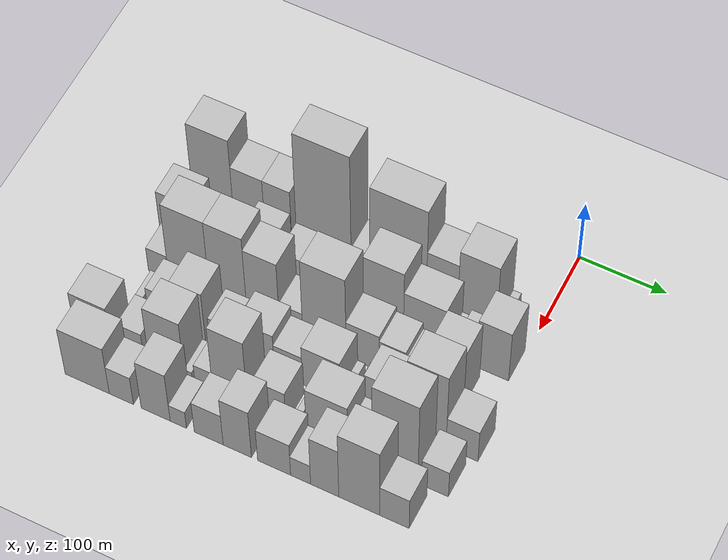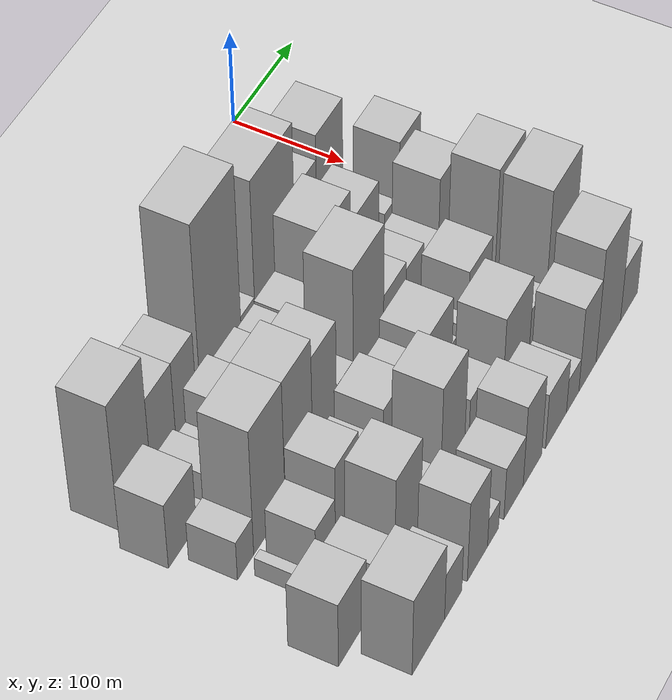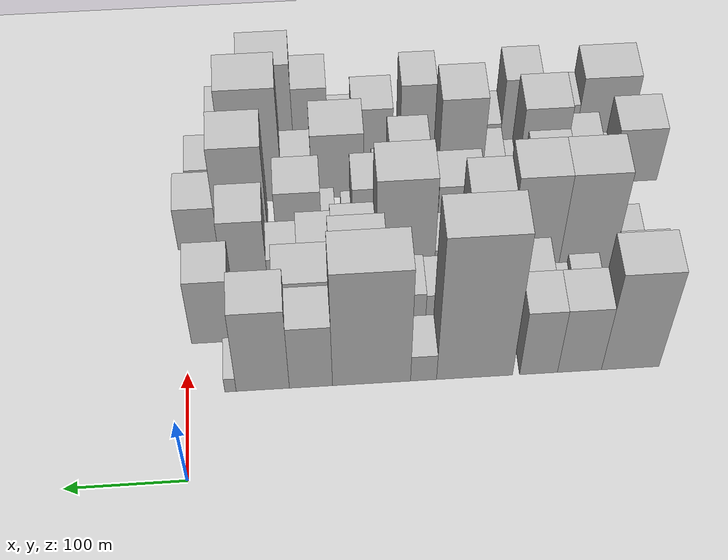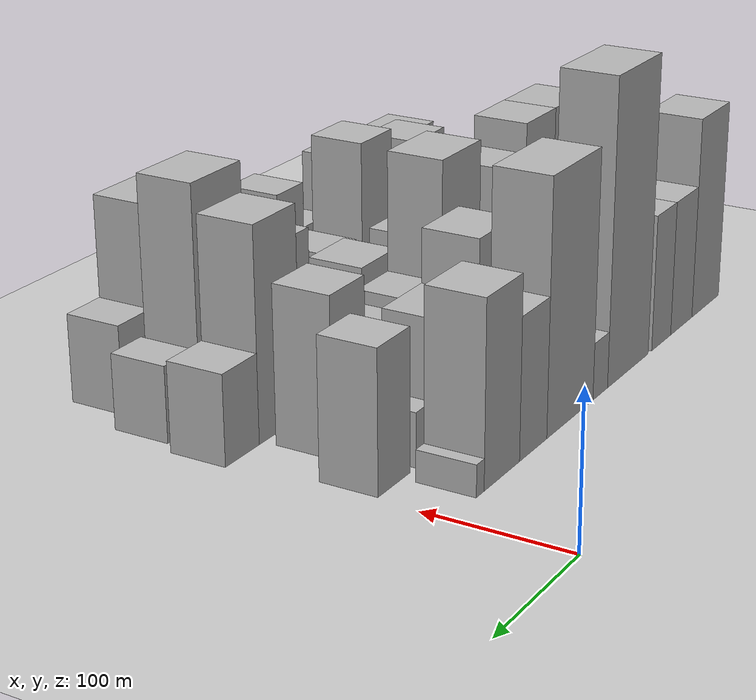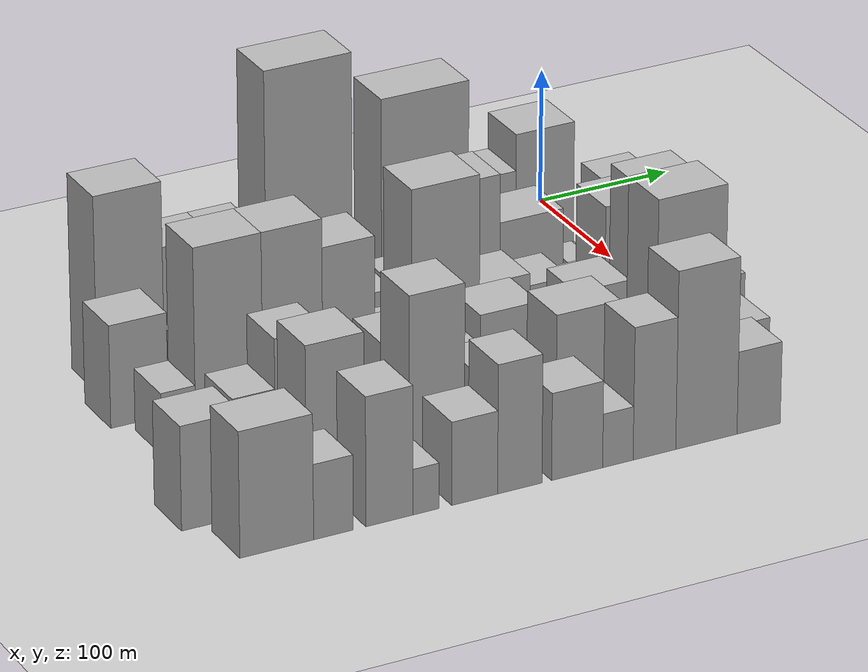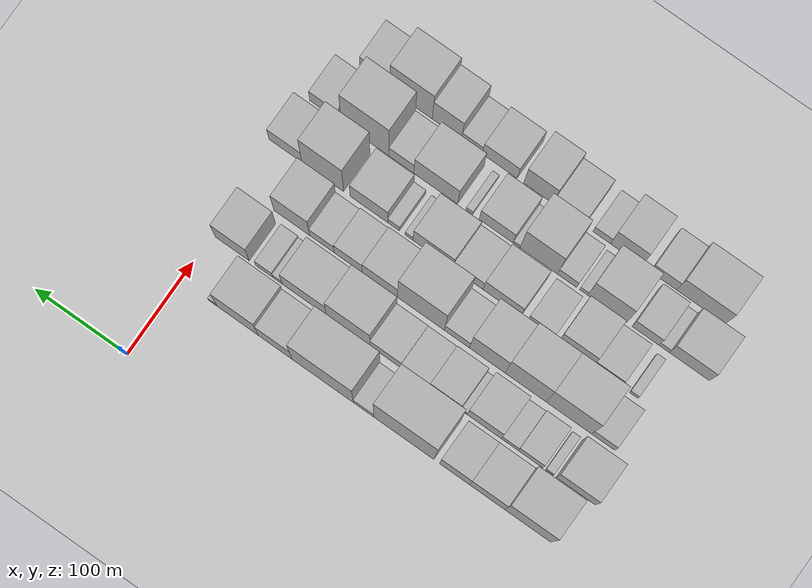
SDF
<sdf version="1.6">
 <world name="default">
  <include><name>ground_plane_1</name><uri>model://HANNAS_ground_plane</uri></include>
  <model name="building_12">
   <static>1</static>
   <pose>100.0000 -373.0268 0 0.000000 0.000000 0.000000</pose>
   <link name="link">
    <pose>0 0 72.00 0 0 0</pose>
    <collision name="collision"><geometry><box><size>40.0000 49.0535 144.0000</size></box></geometry></collision>
    <visual name="visual">
     <cast_shadows>0</cast_shadows>
     <geometry><box><size>40.0000 49.0535 144.0000</size></box></geometry>
     <material>
      <script>
       <uri>model://HANNAS_wall/materials/scripts</uri>
       <uri>model://HANNAS_wall/materials/textures</uri>
       <name>vrc/HANNAS_wall</name>
      </script>
     </material>
    </visual>
   </link>
  </model>
  <model name="building_13">
   <static>1</static>
   <pose>100.0000 -329.8094 0 0.000000 0.000000 0.000000</pose>
   <link name="link">
    <pose>0 0 48.00 0 0 0</pose>
    <collision name="collision"><geometry><box><size>40.0000 37.3814 96.0000</size></box></geometry></collision>
    <visual name="visual">
     <cast_shadows>0</cast_shadows>
     <geometry><box><size>40.0000 37.3814 96.0000</size></box></geometry>
     <material>
      <script>
       <uri>model://HANNAS_wall/materials/scripts</uri>
       <uri>model://HANNAS_wall/materials/textures</uri>
       <name>vrc/HANNAS_wall</name>
      </script>
     </material>
    </visual>
   </link>
  </model>
  <model name="building_14">
   <static>1</static>
   <pose>100.0000 -295.0552 0 0.000000 0.000000 0.000000</pose>
   <link name="link">
    <pose>0 0 48.00 0 0 0</pose>
    <collision name="collision"><geometry><box><size>40.0000 32.1269 96.0000</size></box></geometry></collision>
    <visual name="visual">
     <cast_shadows>0</cast_shadows>
     <geometry><box><size>40.0000 32.1269 96.0000</size></box></geometry>
     <material>
      <script>
       <uri>model://HANNAS_wall/materials/scripts</uri>
       <uri>model://HANNAS_wall/materials/textures</uri>
       <name>vrc/HANNAS_wall</name>
      </script>
     </material>
    </visual>
   </link>
  </model>
  <model name="building_15">
   <static>1</static>
   <pose>100.0000 -240.8266 0 0.000000 0.000000 0.000000</pose>
   <link name="link">
    <pose>0 0 103.50 0 0 0</pose>
    <collision name="collision"><geometry><box><size>40.0000 64.3303 207.0000</size></box></geometry></collision>
    <visual name="visual">
     <cast_shadows>0</cast_shadows>
     <geometry><box><size>40.0000 64.3303 207.0000</size></box></geometry>
     <material>
      <script>
       <uri>model://HANNAS_wall/materials/scripts</uri>
       <uri>model://HANNAS_wall/materials/textures</uri>
       <name>vrc/HANNAS_wall</name>
      </script>
     </material>
    </visual>
   </link>
  </model>
  <model name="building_16">
   <static>1</static>
   <pose>100.0000 -197.7018 0 0.000000 0.000000 0.000000</pose>
   <link name="link">
    <pose>0 0 19.50 0 0 0</pose>
    <collision name="collision"><geometry><box><size>40.0000 21.9192 39.0000</size></box></geometry></collision>
    <visual name="visual">
     <cast_shadows>0</cast_shadows>
     <geometry><box><size>40.0000 21.9192 39.0000</size></box></geometry>
     <material>
      <script>
       <uri>model://HANNAS_wall/materials/scripts</uri>
       <uri>model://HANNAS_wall/materials/textures</uri>
       <name>vrc/HANNAS_wall</name>
      </script>
     </material>
    </visual>
   </link>
  </model>
  <model name="building_17">
   <static>1</static>
   <pose>100.0000 -153.9231 0 0.000000 0.000000 0.000000</pose>
   <link name="link">
    <pose>0 0 84.00 0 0 0</pose>
    <collision name="collision"><geometry><box><size>40.0000 65.6383 168.0000</size></box></geometry></collision>
    <visual name="visual">
     <cast_shadows>0</cast_shadows>
     <geometry><box><size>40.0000 65.6383 168.0000</size></box></geometry>
     <material>
      <script>
       <uri>model://HANNAS_wall/materials/scripts</uri>
       <uri>model://HANNAS_wall/materials/textures</uri>
       <name>vrc/HANNAS_wall</name>
      </script>
     </material>
    </visual>
   </link>
  </model>
  <model name="building_18">
   <static>1</static>
   <pose>100.0000 -102.9866 0 0.000000 0.000000 0.000000</pose>
   <link name="link">
    <pose>0 0 46.50 0 0 0</pose>
    <collision name="collision"><geometry><box><size>40.0000 36.2348 93.0000</size></box></geometry></collision>
    <visual name="visual">
     <cast_shadows>0</cast_shadows>
     <geometry><box><size>40.0000 36.2348 93.0000</size></box></geometry>
     <material>
      <script>
       <uri>model://HANNAS_wall/materials/scripts</uri>
       <uri>model://HANNAS_wall/materials/textures</uri>
       <name>vrc/HANNAS_wall</name>
      </script>
     </material>
    </visual>
   </link>
  </model>
  <model name="building_19">
   <static>1</static>
   <pose>100.0000 -62.6117 0 0.000000 0.000000 0.000000</pose>
   <link name="link">
    <pose>0 0 60.00 0 0 0</pose>
    <collision name="collision"><geometry><box><size>40.0000 44.5149 120.0000</size></box></geometry></collision>
    <visual name="visual">
     <cast_shadows>0</cast_shadows>
     <geometry><box><size>40.0000 44.5149 120.0000</size></box></geometry>
     <material>
      <script>
       <uri>model://HANNAS_wall/materials/scripts</uri>
       <uri>model://HANNAS_wall/materials/textures</uri>
       <name>vrc/HANNAS_wall</name>
      </script>
     </material>
    </visual>
   </link>
  </model>
  <model name="building_20">
   <static>1</static>
   <pose>100.0000 -35.6186 0 0.000000 0.000000 0.000000</pose>
   <link name="link">
    <pose>0 0 10.50 0 0 0</pose>
    <collision name="collision"><geometry><box><size>40.0000 9.4714 21.0000</size></box></geometry></collision>
    <visual name="visual">
     <cast_shadows>0</cast_shadows>
     <geometry><box><size>40.0000 9.4714 21.0000</size></box></geometry>
     <material>
      <script>
       <uri>model://HANNAS_wall/materials/scripts</uri>
       <uri>model://HANNAS_wall/materials/textures</uri>
       <name>vrc/HANNAS_wall</name>
      </script>
     </material>
    </visual>
   </link>
  </model>
  <model name="building_50">
   <static>1</static>
   <pose>149.0000 -390.0981 0 0.000000 0.000000 0.000000</pose>
   <link name="link">
    <pose>0 0 37.50 0 0 0</pose>
    <collision name="collision"><geometry><box><size>40.0000 41.4963 75.0000</size></box></geometry></collision>
    <visual name="visual">
     <cast_shadows>0</cast_shadows>
     <geometry><box><size>40.0000 41.4963 75.0000</size></box></geometry>
     <material>
      <script>
       <uri>model://HANNAS_wall/materials/scripts</uri>
       <uri>model://HANNAS_wall/materials/textures</uri>
       <name>vrc/HANNAS_wall</name>
      </script>
     </material>
    </visual>
   </link>
  </model>
  <model name="building_51">
   <static>1</static>
   <pose>149.0000 -362.1024 0 0.000000 0.000000 0.000000</pose>
   <link name="link">
    <pose>0 0 9.00 0 0 0</pose>
    <collision name="collision"><geometry><box><size>40.0000 8.4950 18.0000</size></box></geometry></collision>
    <visual name="visual">
     <cast_shadows>0</cast_shadows>
     <geometry><box><size>40.0000 8.4950 18.0000</size></box></geometry>
     <material>
      <script>
       <uri>model://HANNAS_wall/materials/scripts</uri>
       <uri>model://HANNAS_wall/materials/textures</uri>
       <name>vrc/HANNAS_wall</name>
      </script>
     </material>
    </visual>
   </link>
  </model>
  <model name="building_52">
   <static>1</static>
   <pose>149.0000 -341.7077 0 0.000000 0.000000 0.000000</pose>
   <link name="link">
    <pose>0 0 22.50 0 0 0</pose>
    <collision name="collision"><geometry><box><size>40.0000 26.2945 45.0000</size></box></geometry></collision>
    <visual name="visual">
     <cast_shadows>0</cast_shadows>
     <geometry><box><size>40.0000 26.2945 45.0000</size></box></geometry>
     <material>
      <script>
       <uri>model://HANNAS_wall/materials/scripts</uri>
       <uri>model://HANNAS_wall/materials/textures</uri>
       <name>vrc/HANNAS_wall</name>
      </script>
     </material>
    </visual>
   </link>
  </model>
  <model name="building_53">
   <static>1</static>
   <pose>149.0000 -319.5899 0 0.000000 0.000000 0.000000</pose>
   <link name="link">
    <pose>0 0 16.50 0 0 0</pose>
    <collision name="collision"><geometry><box><size>40.0000 17.9410 33.0000</size></box></geometry></collision>
    <visual name="visual">
     <cast_shadows>0</cast_shadows>
     <geometry><box><size>40.0000 17.9410 33.0000</size></box></geometry>
     <material>
      <script>
       <uri>model://HANNAS_wall/materials/scripts</uri>
       <uri>model://HANNAS_wall/materials/textures</uri>
       <name>vrc/HANNAS_wall</name>
      </script>
     </material>
    </visual>
   </link>
  </model>
  <model name="building_54">
   <static>1</static>
   <pose>149.0000 -292.4086 0 0.000000 0.000000 0.000000</pose>
   <link name="link">
    <pose>0 0 36.00 0 0 0</pose>
    <collision name="collision"><geometry><box><size>40.0000 36.4217 72.0000</size></box></geometry></collision>
    <visual name="visual">
     <cast_shadows>0</cast_shadows>
     <geometry><box><size>40.0000 36.4217 72.0000</size></box></geometry>
     <material>
      <script>
       <uri>model://HANNAS_wall/materials/scripts</uri>
       <uri>model://HANNAS_wall/materials/textures</uri>
       <name>vrc/HANNAS_wall</name>
      </script>
     </material>
    </visual>
   </link>
  </model>
  <model name="building_55">
   <static>1</static>
   <pose>149.0000 -270.7496 0 0.000000 0.000000 0.000000</pose>
   <link name="link">
    <pose>0 0 7.50 0 0 0</pose>
    <collision name="collision"><geometry><box><size>40.0000 6.8963 15.0000</size></box></geometry></collision>
    <visual name="visual">
     <cast_shadows>0</cast_shadows>
     <geometry><box><size>40.0000 6.8963 15.0000</size></box></geometry>
     <material>
      <script>
       <uri>model://HANNAS_wall/materials/scripts</uri>
       <uri>model://HANNAS_wall/materials/textures</uri>
       <name>vrc/HANNAS_wall</name>
      </script>
     </material>
    </visual>
   </link>
  </model>
  <model name="building_56">
   <static>1</static>
   <pose>149.0000 -250.5568 0 0.000000 0.000000 0.000000</pose>
   <link name="link">
    <pose>0 0 30.00 0 0 0</pose>
    <collision name="collision"><geometry><box><size>40.0000 33.4891 60.0000</size></box></geometry></collision>
    <visual name="visual">
     <cast_shadows>0</cast_shadows>
     <geometry><box><size>40.0000 33.4891 60.0000</size></box></geometry>
     <material>
      <script>
       <uri>model://HANNAS_wall/materials/scripts</uri>
       <uri>model://HANNAS_wall/materials/textures</uri>
       <name>vrc/HANNAS_wall</name>
      </script>
     </material>
    </visual>
   </link>
  </model>
  <model name="building_57">
   <static>1</static>
   <pose>149.0000 -218.5528 0 0.000000 0.000000 0.000000</pose>
   <link name="link">
    <pose>0 0 27.00 0 0 0</pose>
    <collision name="collision"><geometry><box><size>40.0000 30.5189 54.0000</size></box></geometry></collision>
    <visual name="visual">
     <cast_shadows>0</cast_shadows>
     <geometry><box><size>40.0000 30.5189 54.0000</size></box></geometry>
     <material>
      <script>
       <uri>model://HANNAS_wall/materials/scripts</uri>
       <uri>model://HANNAS_wall/materials/textures</uri>
       <name>vrc/HANNAS_wall</name>
      </script>
     </material>
    </visual>
   </link>
  </model>
  <model name="building_58">
   <static>1</static>
   <pose>149.0000 -186.6593 0 0.000000 0.000000 0.000000</pose>
   <link name="link">
    <pose>0 0 28.50 0 0 0</pose>
    <collision name="collision"><geometry><box><size>40.0000 33.2682 57.0000</size></box></geometry></collision>
    <visual name="visual">
     <cast_shadows>0</cast_shadows>
     <geometry><box><size>40.0000 33.2682 57.0000</size></box></geometry>
     <material>
      <script>
       <uri>model://HANNAS_wall/materials/scripts</uri>
       <uri>model://HANNAS_wall/materials/textures</uri>
       <name>vrc/HANNAS_wall</name>
      </script>
     </material>
    </visual>
   </link>
  </model>
  <model name="building_59">
   <static>1</static>
   <pose>149.0000 -146.6231 0 0.000000 0.000000 0.000000</pose>
   <link name="link">
    <pose>0 0 60.00 0 0 0</pose>
    <collision name="collision"><geometry><box><size>40.0000 46.8044 120.0000</size></box></geometry></collision>
    <visual name="visual">
     <cast_shadows>0</cast_shadows>
     <geometry><box><size>40.0000 46.8044 120.0000</size></box></geometry>
     <material>
      <script>
       <uri>model://HANNAS_wall/materials/scripts</uri>
       <uri>model://HANNAS_wall/materials/textures</uri>
       <name>vrc/HANNAS_wall</name>
      </script>
     </material>
    </visual>
   </link>
  </model>
  <model name="building_60">
   <static>1</static>
   <pose>149.0000 -99.2421 0 0.000000 0.000000 0.000000</pose>
   <link name="link">
    <pose>0 0 42.00 0 0 0</pose>
    <collision name="collision"><geometry><box><size>40.0000 47.9576 84.0000</size></box></geometry></collision>
    <visual name="visual">
     <cast_shadows>0</cast_shadows>
     <geometry><box><size>40.0000 47.9576 84.0000</size></box></geometry>
     <material>
      <script>
       <uri>model://HANNAS_wall/materials/scripts</uri>
       <uri>model://HANNAS_wall/materials/textures</uri>
       <name>vrc/HANNAS_wall</name>
      </script>
     </material>
    </visual>
   </link>
  </model>
  <model name="building_61">
   <static>1</static>
   <pose>149.0000 -70.0975 0 0.000000 0.000000 0.000000</pose>
   <link name="link">
    <pose>0 0 12.00 0 0 0</pose>
    <collision name="collision"><geometry><box><size>40.0000 10.3316 24.0000</size></box></geometry></collision>
    <visual name="visual">
     <cast_shadows>0</cast_shadows>
     <geometry><box><size>40.0000 10.3316 24.0000</size></box></geometry>
     <material>
      <script>
       <uri>model://HANNAS_wall/materials/scripts</uri>
       <uri>model://HANNAS_wall/materials/textures</uri>
       <name>vrc/HANNAS_wall</name>
      </script>
     </material>
    </visual>
   </link>
  </model>
  <model name="building_62">
   <static>1</static>
   <pose>149.0000 -55.8874 0 0.000000 0.000000 0.000000</pose>
   <link name="link">
    <pose>0 0 18.00 0 0 0</pose>
    <collision name="collision"><geometry><box><size>40.0000 18.0885 36.0000</size></box></geometry></collision>
    <visual name="visual">
     <cast_shadows>0</cast_shadows>
     <geometry><box><size>40.0000 18.0885 36.0000</size></box></geometry>
     <material>
      <script>
       <uri>model://HANNAS_wall/materials/scripts</uri>
       <uri>model://HANNAS_wall/materials/textures</uri>
       <name>vrc/HANNAS_wall</name>
      </script>
     </material>
    </visual>
   </link>
  </model>
  <model name="building_63">
   <static>1</static>
   <pose>149.0000 -21.5145 0 0.000000 0.000000 0.000000</pose>
   <link name="link">
    <pose>0 0 46.50 0 0 0</pose>
    <collision name="collision"><geometry><box><size>40.0000 36.6574 93.0000</size></box></geometry></collision>
    <visual name="visual">
     <cast_shadows>0</cast_shadows>
     <geometry><box><size>40.0000 36.6574 93.0000</size></box></geometry>
     <material>
      <script>
       <uri>model://HANNAS_wall/materials/scripts</uri>
       <uri>model://HANNAS_wall/materials/textures</uri>
       <name>vrc/HANNAS_wall</name>
      </script>
     </material>
    </visual>
   </link>
  </model>
  <model name="building_98">
   <static>1</static>
   <pose>198.0000 -385.2307 0 0.000000 0.000000 0.000000</pose>
   <link name="link">
    <pose>0 0 22.50 0 0 0</pose>
    <collision name="collision"><geometry><box><size>40.0000 24.6811 45.0000</size></box></geometry></collision>
    <visual name="visual">
     <cast_shadows>0</cast_shadows>
     <geometry><box><size>40.0000 24.6811 45.0000</size></box></geometry>
     <material>
      <script>
       <uri>model://HANNAS_wall/materials/scripts</uri>
       <uri>model://HANNAS_wall/materials/textures</uri>
       <name>vrc/HANNAS_wall</name>
      </script>
     </material>
    </visual>
   </link>
  </model>
  <model name="building_99">
   <static>1</static>
   <pose>198.0000 -348.5359 0 0.000000 0.000000 0.000000</pose>
   <link name="link">
    <pose>0 0 72.00 0 0 0</pose>
    <collision name="collision"><geometry><box><size>40.0000 48.7085 144.0000</size></box></geometry></collision>
    <visual name="visual">
     <cast_shadows>0</cast_shadows>
     <geometry><box><size>40.0000 48.7085 144.0000</size></box></geometry>
     <material>
      <script>
       <uri>model://HANNAS_wall/materials/scripts</uri>
       <uri>model://HANNAS_wall/materials/textures</uri>
       <name>vrc/HANNAS_wall</name>
      </script>
     </material>
    </visual>
   </link>
  </model>
  <model name="building_100">
   <static>1</static>
   <pose>198.0000 -302.3318 0 0.000000 0.000000 0.000000</pose>
   <link name="link">
    <pose>0 0 72.00 0 0 0</pose>
    <collision name="collision"><geometry><box><size>40.0000 43.6997 144.0000</size></box></geometry></collision>
    <visual name="visual">
     <cast_shadows>0</cast_shadows>
     <geometry><box><size>40.0000 43.6997 144.0000</size></box></geometry>
     <material>
      <script>
       <uri>model://HANNAS_wall/materials/scripts</uri>
       <uri>model://HANNAS_wall/materials/textures</uri>
       <name>vrc/HANNAS_wall</name>
      </script>
     </material>
    </visual>
   </link>
  </model>
  <model name="building_101">
   <static>1</static>
   <pose>198.0000 -261.3246 0 0.000000 0.000000 0.000000</pose>
   <link name="link">
    <pose>0 0 61.50 0 0 0</pose>
    <collision name="collision"><geometry><box><size>40.0000 38.3147 123.0000</size></box></geometry></collision>
    <visual name="visual">
     <cast_shadows>0</cast_shadows>
     <geometry><box><size>40.0000 38.3147 123.0000</size></box></geometry>
     <material>
      <script>
       <uri>model://HANNAS_wall/materials/scripts</uri>
       <uri>model://HANNAS_wall/materials/textures</uri>
       <name>vrc/HANNAS_wall</name>
      </script>
     </material>
    </visual>
   </link>
  </model>
  <model name="building_102">
   <static>1</static>
   <pose>198.0000 -228.6058 0 0.000000 0.000000 0.000000</pose>
   <link name="link">
    <pose>0 0 24.00 0 0 0</pose>
    <collision name="collision"><geometry><box><size>40.0000 27.1228 48.0000</size></box></geometry></collision>
    <visual name="visual">
     <cast_shadows>0</cast_shadows>
     <geometry><box><size>40.0000 27.1228 48.0000</size></box></geometry>
     <material>
      <script>
       <uri>model://HANNAS_wall/materials/scripts</uri>
       <uri>model://HANNAS_wall/materials/textures</uri>
       <name>vrc/HANNAS_wall</name>
      </script>
     </material>
    </visual>
   </link>
  </model>
  <model name="building_103">
   <static>1</static>
   <pose>198.0000 -189.9139 0 0.000000 0.000000 0.000000</pose>
   <link name="link">
    <pose>0 0 75.00 0 0 0</pose>
    <collision name="collision"><geometry><box><size>40.0000 50.2609 150.0000</size></box></geometry></collision>
    <visual name="visual">
     <cast_shadows>0</cast_shadows>
     <geometry><box><size>40.0000 50.2609 150.0000</size></box></geometry>
     <material>
      <script>
       <uri>model://HANNAS_wall/materials/scripts</uri>
       <uri>model://HANNAS_wall/materials/textures</uri>
       <name>vrc/HANNAS_wall</name>
      </script>
     </material>
    </visual>
   </link>
  </model>
  <model name="building_104">
   <static>1</static>
   <pose>198.0000 -145.8619 0 0.000000 0.000000 0.000000</pose>
   <link name="link">
    <pose>0 0 34.50 0 0 0</pose>
    <collision name="collision"><geometry><box><size>40.0000 37.8431 69.0000</size></box></geometry></collision>
    <visual name="visual">
     <cast_shadows>0</cast_shadows>
     <geometry><box><size>40.0000 37.8431 69.0000</size></box></geometry>
     <material>
      <script>
       <uri>model://HANNAS_wall/materials/scripts</uri>
       <uri>model://HANNAS_wall/materials/textures</uri>
       <name>vrc/HANNAS_wall</name>
      </script>
     </material>
    </visual>
   </link>
  </model>
  <model name="building_105">
   <static>1</static>
   <pose>198.0000 -111.8500 0 0.000000 0.000000 0.000000</pose>
   <link name="link">
    <pose>0 0 30.00 0 0 0</pose>
    <collision name="collision"><geometry><box><size>40.0000 30.1807 60.0000</size></box></geometry></collision>
    <visual name="visual">
     <cast_shadows>0</cast_shadows>
     <geometry><box><size>40.0000 30.1807 60.0000</size></box></geometry>
     <material>
      <script>
       <uri>model://HANNAS_wall/materials/scripts</uri>
       <uri>model://HANNAS_wall/materials/textures</uri>
       <name>vrc/HANNAS_wall</name>
      </script>
     </material>
    </visual>
   </link>
  </model>
  <model name="building_106">
   <static>1</static>
   <pose>198.0000 -83.5195 0 0.000000 0.000000 0.000000</pose>
   <link name="link">
    <pose>0 0 24.00 0 0 0</pose>
    <collision name="collision"><geometry><box><size>40.0000 26.4803 48.0000</size></box></geometry></collision>
    <visual name="visual">
     <cast_shadows>0</cast_shadows>
     <geometry><box><size>40.0000 26.4803 48.0000</size></box></geometry>
     <material>
      <script>
       <uri>model://HANNAS_wall/materials/scripts</uri>
       <uri>model://HANNAS_wall/materials/textures</uri>
       <name>vrc/HANNAS_wall</name>
      </script>
     </material>
    </visual>
   </link>
  </model>
  <model name="building_107">
   <static>1</static>
   <pose>198.0000 -50.9484 0 0.000000 0.000000 0.000000</pose>
   <link name="link">
    <pose>0 0 52.50 0 0 0</pose>
    <collision name="collision"><geometry><box><size>40.0000 38.6619 105.0000</size></box></geometry></collision>
    <visual name="visual">
     <cast_shadows>0</cast_shadows>
     <geometry><box><size>40.0000 38.6619 105.0000</size></box></geometry>
     <material>
      <script>
       <uri>model://HANNAS_wall/materials/scripts</uri>
       <uri>model://HANNAS_wall/materials/textures</uri>
       <name>vrc/HANNAS_wall</name>
      </script>
     </material>
    </visual>
   </link>
  </model>
  <model name="building_148">
   <static>1</static>
   <pose>247.0000 -383.6363 0 0.000000 0.000000 0.000000</pose>
   <link name="link">
    <pose>0 0 10.50 0 0 0</pose>
    <collision name="collision"><geometry><box><size>40.0000 9.0646 21.0000</size></box></geometry></collision>
    <visual name="visual">
     <cast_shadows>0</cast_shadows>
     <geometry><box><size>40.0000 9.0646 21.0000</size></box></geometry>
     <material>
      <script>
       <uri>model://HANNAS_wall/materials/scripts</uri>
       <uri>model://HANNAS_wall/materials/textures</uri>
       <name>vrc/HANNAS_wall</name>
      </script>
     </material>
    </visual>
   </link>
  </model>
  <model name="building_149">
   <static>1</static>
   <pose>247.0000 -354.8018 0 0.000000 0.000000 0.000000</pose>
   <link name="link">
    <pose>0 0 28.50 0 0 0</pose>
    <collision name="collision"><geometry><box><size>40.0000 30.6044 57.0000</size></box></geometry></collision>
    <visual name="visual">
     <cast_shadows>0</cast_shadows>
     <geometry><box><size>40.0000 30.6044 57.0000</size></box></geometry>
     <material>
      <script>
       <uri>model://HANNAS_wall/materials/scripts</uri>
       <uri>model://HANNAS_wall/materials/textures</uri>
       <name>vrc/HANNAS_wall</name>
      </script>
     </material>
    </visual>
   </link>
  </model>
  <model name="building_150">
   <static>1</static>
   <pose>247.0000 -321.1986 0 0.000000 0.000000 0.000000</pose>
   <link name="link">
    <pose>0 0 46.50 0 0 0</pose>
    <collision name="collision"><geometry><box><size>40.0000 36.6021 93.0000</size></box></geometry></collision>
    <visual name="visual">
     <cast_shadows>0</cast_shadows>
     <geometry><box><size>40.0000 36.6021 93.0000</size></box></geometry>
     <material>
      <script>
       <uri>model://HANNAS_wall/materials/scripts</uri>
       <uri>model://HANNAS_wall/materials/textures</uri>
       <name>vrc/HANNAS_wall</name>
      </script>
     </material>
    </visual>
   </link>
  </model>
  <model name="building_151">
   <static>1</static>
   <pose>247.0000 -283.9694 0 0.000000 0.000000 0.000000</pose>
   <link name="link">
    <pose>0 0 25.50 0 0 0</pose>
    <collision name="collision"><geometry><box><size>40.0000 27.8563 51.0000</size></box></geometry></collision>
    <visual name="visual">
     <cast_shadows>0</cast_shadows>
     <geometry><box><size>40.0000 27.8563 51.0000</size></box></geometry>
     <material>
      <script>
       <uri>model://HANNAS_wall/materials/scripts</uri>
       <uri>model://HANNAS_wall/materials/textures</uri>
       <name>vrc/HANNAS_wall</name>
      </script>
     </material>
    </visual>
   </link>
  </model>
  <model name="building_152">
   <static>1</static>
   <pose>247.0000 -242.7623 0 0.000000 0.000000 0.000000</pose>
   <link name="link">
    <pose>0 0 36.00 0 0 0</pose>
    <collision name="collision"><geometry><box><size>40.0000 40.5579 72.0000</size></box></geometry></collision>
    <visual name="visual">
     <cast_shadows>0</cast_shadows>
     <geometry><box><size>40.0000 40.5579 72.0000</size></box></geometry>
     <material>
      <script>
       <uri>model://HANNAS_wall/materials/scripts</uri>
       <uri>model://HANNAS_wall/materials/textures</uri>
       <name>vrc/HANNAS_wall</name>
      </script>
     </material>
    </visual>
   </link>
  </model>
  <model name="building_153">
   <static>1</static>
   <pose>247.0000 -206.3472 0 0.000000 0.000000 0.000000</pose>
   <link name="link">
    <pose>0 0 27.00 0 0 0</pose>
    <collision name="collision"><geometry><box><size>40.0000 32.2722 54.0000</size></box></geometry></collision>
    <visual name="visual">
     <cast_shadows>0</cast_shadows>
     <geometry><box><size>40.0000 32.2722 54.0000</size></box></geometry>
     <material>
      <script>
       <uri>model://HANNAS_wall/materials/scripts</uri>
       <uri>model://HANNAS_wall/materials/textures</uri>
       <name>vrc/HANNAS_wall</name>
      </script>
     </material>
    </visual>
   </link>
  </model>
  <model name="building_154">
   <static>1</static>
   <pose>247.0000 -168.5744 0 0.000000 0.000000 0.000000</pose>
   <link name="link">
    <pose>0 0 37.50 0 0 0</pose>
    <collision name="collision"><geometry><box><size>40.0000 43.2733 75.0000</size></box></geometry></collision>
    <visual name="visual">
     <cast_shadows>0</cast_shadows>
     <geometry><box><size>40.0000 43.2733 75.0000</size></box></geometry>
     <material>
      <script>
       <uri>model://HANNAS_wall/materials/scripts</uri>
       <uri>model://HANNAS_wall/materials/textures</uri>
       <name>vrc/HANNAS_wall</name>
      </script>
     </material>
    </visual>
   </link>
  </model>
  <model name="building_155">
   <static>1</static>
   <pose>247.0000 -142.6561 0 0.000000 0.000000 0.000000</pose>
   <link name="link">
    <pose>0 0 10.50 0 0 0</pose>
    <collision name="collision"><geometry><box><size>40.0000 8.5634 21.0000</size></box></geometry></collision>
    <visual name="visual">
     <cast_shadows>0</cast_shadows>
     <geometry><box><size>40.0000 8.5634 21.0000</size></box></geometry>
     <material>
      <script>
       <uri>model://HANNAS_wall/materials/scripts</uri>
       <uri>model://HANNAS_wall/materials/textures</uri>
       <name>vrc/HANNAS_wall</name>
      </script>
     </material>
    </visual>
   </link>
  </model>
  <model name="building_156">
   <static>1</static>
   <pose>247.0000 -125.9421 0 0.000000 0.000000 0.000000</pose>
   <link name="link">
    <pose>0 0 13.50 0 0 0</pose>
    <collision name="collision"><geometry><box><size>40.0000 12.8646 27.0000</size></box></geometry></collision>
    <visual name="visual">
     <cast_shadows>0</cast_shadows>
     <geometry><box><size>40.0000 12.8646 27.0000</size></box></geometry>
     <material>
      <script>
       <uri>model://HANNAS_wall/materials/scripts</uri>
       <uri>model://HANNAS_wall/materials/textures</uri>
       <name>vrc/HANNAS_wall</name>
      </script>
     </material>
    </visual>
   </link>
  </model>
  <model name="building_157">
   <static>1</static>
   <pose>247.0000 -99.2802 0 0.000000 0.000000 0.000000</pose>
   <link name="link">
    <pose>0 0 37.50 0 0 0</pose>
    <collision name="collision"><geometry><box><size>40.0000 40.4591 75.0000</size></box></geometry></collision>
    <visual name="visual">
     <cast_shadows>0</cast_shadows>
     <geometry><box><size>40.0000 40.4591 75.0000</size></box></geometry>
     <material>
      <script>
       <uri>model://HANNAS_wall/materials/scripts</uri>
       <uri>model://HANNAS_wall/materials/textures</uri>
       <name>vrc/HANNAS_wall</name>
      </script>
     </material>
    </visual>
   </link>
  </model>
  <model name="building_158">
   <static>1</static>
   <pose>247.0000 -49.4859 0 0.000000 0.000000 0.000000</pose>
   <link name="link">
    <pose>0 0 70.50 0 0 0</pose>
    <collision name="collision"><geometry><box><size>40.0000 45.1297 141.0000</size></box></geometry></collision>
    <visual name="visual">
     <cast_shadows>0</cast_shadows>
     <geometry><box><size>40.0000 45.1297 141.0000</size></box></geometry>
     <material>
      <script>
       <uri>model://HANNAS_wall/materials/scripts</uri>
       <uri>model://HANNAS_wall/materials/textures</uri>
       <name>vrc/HANNAS_wall</name>
      </script>
     </material>
    </visual>
   </link>
  </model>
  <model name="building_159">
   <static>1</static>
   <pose>247.0000 -9.1135 0 0.000000 0.000000 0.000000</pose>
   <link name="link">
    <pose>0 0 30.00 0 0 0</pose>
    <collision name="collision"><geometry><box><size>40.0000 35.6151 60.0000</size></box></geometry></collision>
    <visual name="visual">
     <cast_shadows>0</cast_shadows>
     <geometry><box><size>40.0000 35.6151 60.0000</size></box></geometry>
     <material>
      <script>
       <uri>model://HANNAS_wall/materials/scripts</uri>
       <uri>model://HANNAS_wall/materials/textures</uri>
       <name>vrc/HANNAS_wall</name>
      </script>
     </material>
    </visual>
   </link>
  </model>
  <model name="building_194">
   <static>1</static>
   <pose>296.0000 -409.0235 0 0.000000 0.000000 0.000000</pose>
   <link name="link">
    <pose>0 0 37.50 0 0 0</pose>
    <collision name="collision"><geometry><box><size>40.0000 42.9086 75.0000</size></box></geometry></collision>
    <visual name="visual">
     <cast_shadows>0</cast_shadows>
     <geometry><box><size>40.0000 42.9086 75.0000</size></box></geometry>
     <material>
      <script>
       <uri>model://HANNAS_wall/materials/scripts</uri>
       <uri>model://HANNAS_wall/materials/textures</uri>
       <name>vrc/HANNAS_wall</name>
      </script>
     </material>
    </visual>
   </link>
  </model>
  <model name="building_195">
   <static>1</static>
   <pose>296.0000 -382.0107 0 0.000000 0.000000 0.000000</pose>
   <link name="link">
    <pose>0 0 12.00 0 0 0</pose>
    <collision name="collision"><geometry><box><size>40.0000 11.1169 24.0000</size></box></geometry></collision>
    <visual name="visual">
     <cast_shadows>0</cast_shadows>
     <geometry><box><size>40.0000 11.1169 24.0000</size></box></geometry>
     <material>
      <script>
       <uri>model://HANNAS_wall/materials/scripts</uri>
       <uri>model://HANNAS_wall/materials/textures</uri>
       <name>vrc/HANNAS_wall</name>
      </script>
     </material>
    </visual>
   </link>
  </model>
  <model name="building_196">
   <static>1</static>
   <pose>296.0000 -362.2135 0 0.000000 0.000000 0.000000</pose>
   <link name="link">
    <pose>0 0 27.00 0 0 0</pose>
    <collision name="collision"><geometry><box><size>40.0000 28.4775 54.0000</size></box></geometry></collision>
    <visual name="visual">
     <cast_shadows>0</cast_shadows>
     <geometry><box><size>40.0000 28.4775 54.0000</size></box></geometry>
     <material>
      <script>
       <uri>model://HANNAS_wall/materials/scripts</uri>
       <uri>model://HANNAS_wall/materials/textures</uri>
       <name>vrc/HANNAS_wall</name>
      </script>
     </material>
    </visual>
   </link>
  </model>
  <model name="building_197">
   <static>1</static>
   <pose>296.0000 -321.1158 0 0.000000 0.000000 0.000000</pose>
   <link name="link">
    <pose>0 0 55.50 0 0 0</pose>
    <collision name="collision"><geometry><box><size>40.0000 41.7178 111.0000</size></box></geometry></collision>
    <visual name="visual">
     <cast_shadows>0</cast_shadows>
     <geometry><box><size>40.0000 41.7178 111.0000</size></box></geometry>
     <material>
      <script>
       <uri>model://HANNAS_wall/materials/scripts</uri>
       <uri>model://HANNAS_wall/materials/textures</uri>
       <name>vrc/HANNAS_wall</name>
      </script>
     </material>
    </visual>
   </link>
  </model>
  <model name="building_198">
   <static>1</static>
   <pose>296.0000 -295.8527 0 0.000000 0.000000 0.000000</pose>
   <link name="link">
    <pose>0 0 10.50 0 0 0</pose>
    <collision name="collision"><geometry><box><size>40.0000 8.8083 21.0000</size></box></geometry></collision>
    <visual name="visual">
     <cast_shadows>0</cast_shadows>
     <geometry><box><size>40.0000 8.8083 21.0000</size></box></geometry>
     <material>
      <script>
       <uri>model://HANNAS_wall/materials/scripts</uri>
       <uri>model://HANNAS_wall/materials/textures</uri>
       <name>vrc/HANNAS_wall</name>
      </script>
     </material>
    </visual>
   </link>
  </model>
  <model name="building_199">
   <static>1</static>
   <pose>296.0000 -278.1027 0 0.000000 0.000000 0.000000</pose>
   <link name="link">
    <pose>0 0 19.50 0 0 0</pose>
    <collision name="collision"><geometry><box><size>40.0000 20.6919 39.0000</size></box></geometry></collision>
    <visual name="visual">
     <cast_shadows>0</cast_shadows>
     <geometry><box><size>40.0000 20.6919 39.0000</size></box></geometry>
     <material>
      <script>
       <uri>model://HANNAS_wall/materials/scripts</uri>
       <uri>model://HANNAS_wall/materials/textures</uri>
       <name>vrc/HANNAS_wall</name>
      </script>
     </material>
    </visual>
   </link>
  </model>
  <model name="building_200">
   <static>1</static>
   <pose>296.0000 -247.6811 0 0.000000 0.000000 0.000000</pose>
   <link name="link">
    <pose>0 0 64.50 0 0 0</pose>
    <collision name="collision"><geometry><box><size>40.0000 40.1512 129.0000</size></box></geometry></collision>
    <visual name="visual">
     <cast_shadows>0</cast_shadows>
     <geometry><box><size>40.0000 40.1512 129.0000</size></box></geometry>
     <material>
      <script>
       <uri>model://HANNAS_wall/materials/scripts</uri>
       <uri>model://HANNAS_wall/materials/textures</uri>
       <name>vrc/HANNAS_wall</name>
      </script>
     </material>
    </visual>
   </link>
  </model>
  <model name="building_201">
   <static>1</static>
   <pose>296.0000 -223.9058 0 0.000000 0.000000 0.000000</pose>
   <link name="link">
    <pose>0 0 7.50 0 0 0</pose>
    <collision name="collision"><geometry><box><size>40.0000 7.3995 15.0000</size></box></geometry></collision>
    <visual name="visual">
     <cast_shadows>0</cast_shadows>
     <geometry><box><size>40.0000 7.3995 15.0000</size></box></geometry>
     <material>
      <script>
       <uri>model://HANNAS_wall/materials/scripts</uri>
       <uri>model://HANNAS_wall/materials/textures</uri>
       <name>vrc/HANNAS_wall</name>
      </script>
     </material>
    </visual>
   </link>
  </model>
  <model name="building_202">
   <static>1</static>
   <pose>296.0000 -201.9342 0 0.000000 0.000000 0.000000</pose>
   <link name="link">
    <pose>0 0 31.50 0 0 0</pose>
    <collision name="collision"><geometry><box><size>40.0000 36.5437 63.0000</size></box></geometry></collision>
    <visual name="visual">
     <cast_shadows>0</cast_shadows>
     <geometry><box><size>40.0000 36.5437 63.0000</size></box></geometry>
     <material>
      <script>
       <uri>model://HANNAS_wall/materials/scripts</uri>
       <uri>model://HANNAS_wall/materials/textures</uri>
       <name>vrc/HANNAS_wall</name>
      </script>
     </material>
    </visual>
   </link>
  </model>
  <model name="building_203">
   <static>1</static>
   <pose>296.0000 -173.0365 0 0.000000 0.000000 0.000000</pose>
   <link name="link">
    <pose>0 0 9.00 0 0 0</pose>
    <collision name="collision"><geometry><box><size>40.0000 7.2517 18.0000</size></box></geometry></collision>
    <visual name="visual">
     <cast_shadows>0</cast_shadows>
     <geometry><box><size>40.0000 7.2517 18.0000</size></box></geometry>
     <material>
      <script>
       <uri>model://HANNAS_wall/materials/scripts</uri>
       <uri>model://HANNAS_wall/materials/textures</uri>
       <name>vrc/HANNAS_wall</name>
      </script>
     </material>
    </visual>
   </link>
  </model>
  <model name="building_204">
   <static>1</static>
   <pose>296.0000 -136.8110 0 0.000000 0.000000 0.000000</pose>
   <link name="link">
    <pose>0 0 45.00 0 0 0</pose>
    <collision name="collision"><geometry><box><size>40.0000 47.1992 90.0000</size></box></geometry></collision>
    <visual name="visual">
     <cast_shadows>0</cast_shadows>
     <geometry><box><size>40.0000 47.1992 90.0000</size></box></geometry>
     <material>
      <script>
       <uri>model://HANNAS_wall/materials/scripts</uri>
       <uri>model://HANNAS_wall/materials/textures</uri>
       <name>vrc/HANNAS_wall</name>
      </script>
     </material>
    </visual>
   </link>
  </model>
  <model name="building_205">
   <static>1</static>
   <pose>296.0000 -99.6977 0 0.000000 0.000000 0.000000</pose>
   <link name="link">
    <pose>0 0 25.50 0 0 0</pose>
    <collision name="collision"><geometry><box><size>40.0000 27.0275 51.0000</size></box></geometry></collision>
    <visual name="visual">
     <cast_shadows>0</cast_shadows>
     <geometry><box><size>40.0000 27.0275 51.0000</size></box></geometry>
     <material>
      <script>
       <uri>model://HANNAS_wall/materials/scripts</uri>
       <uri>model://HANNAS_wall/materials/textures</uri>
       <name>vrc/HANNAS_wall</name>
      </script>
     </material>
    </visual>
   </link>
  </model>
  <model name="building_206">
   <static>1</static>
   <pose>296.0000 -60.4332 0 0.000000 0.000000 0.000000</pose>
   <link name="link">
    <pose>0 0 78.00 0 0 0</pose>
    <collision name="collision"><geometry><box><size>40.0000 51.5015 156.0000</size></box></geometry></collision>
    <visual name="visual">
     <cast_shadows>0</cast_shadows>
     <geometry><box><size>40.0000 51.5015 156.0000</size></box></geometry>
     <material>
      <script>
       <uri>model://HANNAS_wall/materials/scripts</uri>
       <uri>model://HANNAS_wall/materials/textures</uri>
       <name>vrc/HANNAS_wall</name>
      </script>
     </material>
    </visual>
   </link>
  </model>
  <model name="building_207">
   <static>1</static>
   <pose>296.0000 -15.6416 0 0.000000 0.000000 0.000000</pose>
   <link name="link">
    <pose>0 0 25.50 0 0 0</pose>
    <collision name="collision"><geometry><box><size>40.0000 30.0817 51.0000</size></box></geometry></collision>
    <visual name="visual">
     <cast_shadows>0</cast_shadows>
     <geometry><box><size>40.0000 30.0817 51.0000</size></box></geometry>
     <material>
      <script>
       <uri>model://HANNAS_wall/materials/scripts</uri>
       <uri>model://HANNAS_wall/materials/textures</uri>
       <name>vrc/HANNAS_wall</name>
      </script>
     </material>
    </visual>
   </link>
  </model>
  <model name="building_245">
   <static>1</static>
   <pose>345.0000 -387.4278 0 0.000000 0.000000 0.000000</pose>
   <link name="link">
    <pose>0 0 45.00 0 0 0</pose>
    <collision name="collision"><geometry><box><size>40.0000 51.9498 90.0000</size></box></geometry></collision>
    <visual name="visual">
     <cast_shadows>0</cast_shadows>
     <geometry><box><size>40.0000 51.9498 90.0000</size></box></geometry>
     <material>
      <script>
       <uri>model://HANNAS_wall/materials/scripts</uri>
       <uri>model://HANNAS_wall/materials/textures</uri>
       <name>vrc/HANNAS_wall</name>
      </script>
     </material>
    </visual>
   </link>
  </model>
  <model name="building_246">
   <static>1</static>
   <pose>345.0000 -347.3774 0 0.000000 0.000000 0.000000</pose>
   <link name="link">
    <pose>0 0 27.00 0 0 0</pose>
    <collision name="collision"><geometry><box><size>40.0000 28.1510 54.0000</size></box></geometry></collision>
    <visual name="visual">
     <cast_shadows>0</cast_shadows>
     <geometry><box><size>40.0000 28.1510 54.0000</size></box></geometry>
     <material>
      <script>
       <uri>model://HANNAS_wall/materials/scripts</uri>
       <uri>model://HANNAS_wall/materials/textures</uri>
       <name>vrc/HANNAS_wall</name>
      </script>
     </material>
    </visual>
   </link>
  </model>
  <model name="building_247">
   <static>1</static>
   <pose>345.0000 -307.4286 0 0.000000 0.000000 0.000000</pose>
   <link name="link">
    <pose>0 0 46.50 0 0 0</pose>
    <collision name="collision"><geometry><box><size>40.0000 33.7466 93.0000</size></box></geometry></collision>
    <visual name="visual">
     <cast_shadows>0</cast_shadows>
     <geometry><box><size>40.0000 33.7466 93.0000</size></box></geometry>
     <material>
      <script>
       <uri>model://HANNAS_wall/materials/scripts</uri>
       <uri>model://HANNAS_wall/materials/textures</uri>
       <name>vrc/HANNAS_wall</name>
      </script>
     </material>
    </visual>
   </link>
  </model>
  <model name="building_248">
   <static>1</static>
   <pose>345.0000 -281.1662 0 0.000000 0.000000 0.000000</pose>
   <link name="link">
    <pose>0 0 16.50 0 0 0</pose>
    <collision name="collision"><geometry><box><size>40.0000 18.7781 33.0000</size></box></geometry></collision>
    <visual name="visual">
     <cast_shadows>0</cast_shadows>
     <geometry><box><size>40.0000 18.7781 33.0000</size></box></geometry>
     <material>
      <script>
       <uri>model://HANNAS_wall/materials/scripts</uri>
       <uri>model://HANNAS_wall/materials/textures</uri>
       <name>vrc/HANNAS_wall</name>
      </script>
     </material>
    </visual>
   </link>
  </model>
  <model name="building_249">
   <static>1</static>
   <pose>345.0000 -246.1431 0 0.000000 0.000000 0.000000</pose>
   <link name="link">
    <pose>0 0 30.00 0 0 0</pose>
    <collision name="collision"><geometry><box><size>40.0000 33.2680 60.0000</size></box></geometry></collision>
    <visual name="visual">
     <cast_shadows>0</cast_shadows>
     <geometry><box><size>40.0000 33.2680 60.0000</size></box></geometry>
     <material>
      <script>
       <uri>model://HANNAS_wall/materials/scripts</uri>
       <uri>model://HANNAS_wall/materials/textures</uri>
       <name>vrc/HANNAS_wall</name>
      </script>
     </material>
    </visual>
   </link>
  </model>
  <model name="building_250">
   <static>1</static>
   <pose>345.0000 -213.3630 0 0.000000 0.000000 0.000000</pose>
   <link name="link">
    <pose>0 0 46.50 0 0 0</pose>
    <collision name="collision"><geometry><box><size>40.0000 32.2923 93.0000</size></box></geometry></collision>
    <visual name="visual">
     <cast_shadows>0</cast_shadows>
     <geometry><box><size>40.0000 32.2923 93.0000</size></box></geometry>
     <material>
      <script>
       <uri>model://HANNAS_wall/materials/scripts</uri>
       <uri>model://HANNAS_wall/materials/textures</uri>
       <name>vrc/HANNAS_wall</name>
      </script>
     </material>
    </visual>
   </link>
  </model>
  <model name="building_251">
   <static>1</static>
   <pose>345.0000 -171.4675 0 0.000000 0.000000 0.000000</pose>
   <link name="link">
    <pose>0 0 31.50 0 0 0</pose>
    <collision name="collision"><geometry><box><size>40.0000 37.4987 63.0000</size></box></geometry></collision>
    <visual name="visual">
     <cast_shadows>0</cast_shadows>
     <geometry><box><size>40.0000 37.4987 63.0000</size></box></geometry>
     <material>
      <script>
       <uri>model://HANNAS_wall/materials/scripts</uri>
       <uri>model://HANNAS_wall/materials/textures</uri>
       <name>vrc/HANNAS_wall</name>
      </script>
     </material>
    </visual>
   </link>
  </model>
  <model name="building_252">
   <static>1</static>
   <pose>345.0000 -141.4607 0 0.000000 0.000000 0.000000</pose>
   <link name="link">
    <pose>0 0 19.50 0 0 0</pose>
    <collision name="collision"><geometry><box><size>40.0000 22.5148 39.0000</size></box></geometry></collision>
    <visual name="visual">
     <cast_shadows>0</cast_shadows>
     <geometry><box><size>40.0000 22.5148 39.0000</size></box></geometry>
     <material>
      <script>
       <uri>model://HANNAS_wall/materials/scripts</uri>
       <uri>model://HANNAS_wall/materials/textures</uri>
       <name>vrc/HANNAS_wall</name>
      </script>
     </material>
    </visual>
   </link>
  </model>
  <model name="building_253">
   <static>1</static>
   <pose>345.0000 -114.3712 0 0.000000 0.000000 0.000000</pose>
   <link name="link">
    <pose>0 0 48.00 0 0 0</pose>
    <collision name="collision"><geometry><box><size>40.0000 31.6643 96.0000</size></box></geometry></collision>
    <visual name="visual">
     <cast_shadows>0</cast_shadows>
     <geometry><box><size>40.0000 31.6643 96.0000</size></box></geometry>
     <material>
      <script>
       <uri>model://HANNAS_wall/materials/scripts</uri>
       <uri>model://HANNAS_wall/materials/textures</uri>
       <name>vrc/HANNAS_wall</name>
      </script>
     </material>
    </visual>
   </link>
  </model>
  <model name="building_254">
   <static>1</static>
   <pose>345.0000 -75.6243 0 0.000000 0.000000 0.000000</pose>
   <link name="link">
    <pose>0 0 64.50 0 0 0</pose>
    <collision name="collision"><geometry><box><size>40.0000 45.8294 129.0000</size></box></geometry></collision>
    <visual name="visual">
     <cast_shadows>0</cast_shadows>
     <geometry><box><size>40.0000 45.8294 129.0000</size></box></geometry>
     <material>
      <script>
       <uri>model://HANNAS_wall/materials/scripts</uri>
       <uri>model://HANNAS_wall/materials/textures</uri>
       <name>vrc/HANNAS_wall</name>
      </script>
     </material>
    </visual>
   </link>
  </model>
  <model name="building_255">
   <static>1</static>
   <pose>345.0000 -36.4302 0 0.000000 0.000000 0.000000</pose>
   <link name="link">
    <pose>0 0 30.00 0 0 0</pose>
    <collision name="collision"><geometry><box><size>40.0000 32.5586 60.0000</size></box></geometry></collision>
    <visual name="visual">
     <cast_shadows>0</cast_shadows>
     <geometry><box><size>40.0000 32.5586 60.0000</size></box></geometry>
     <material>
      <script>
       <uri>model://HANNAS_wall/materials/scripts</uri>
       <uri>model://HANNAS_wall/materials/textures</uri>
       <name>vrc/HANNAS_wall</name>
      </script>
     </material>
    </visual>
   </link>
  </model>
 </world>
</sdf>
